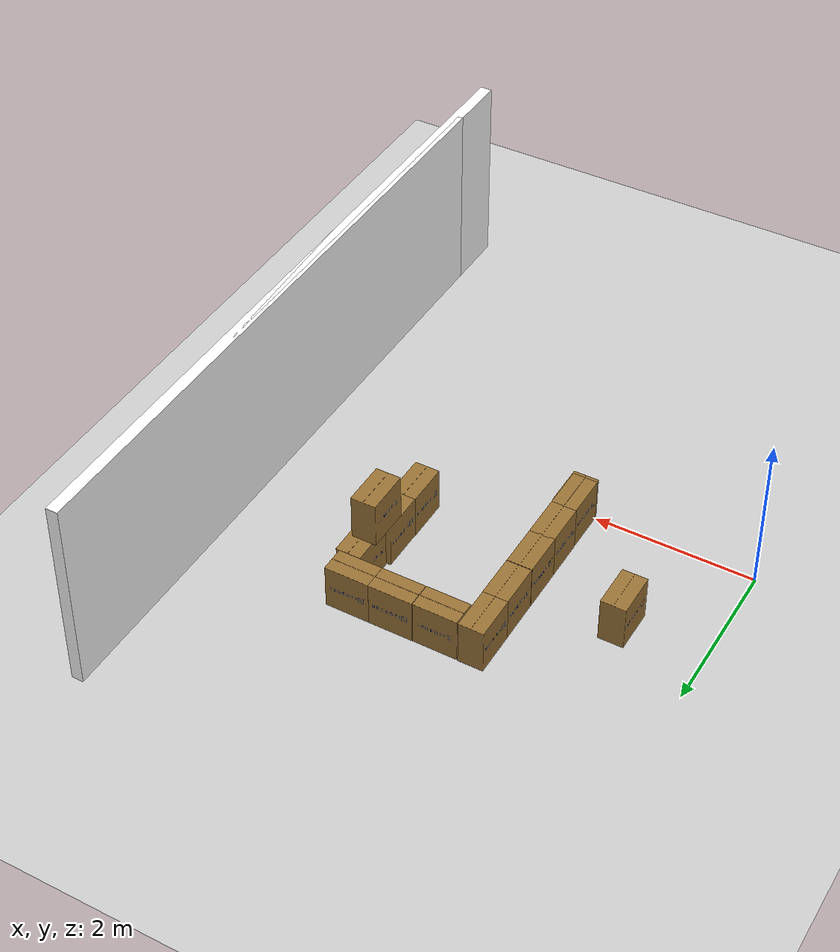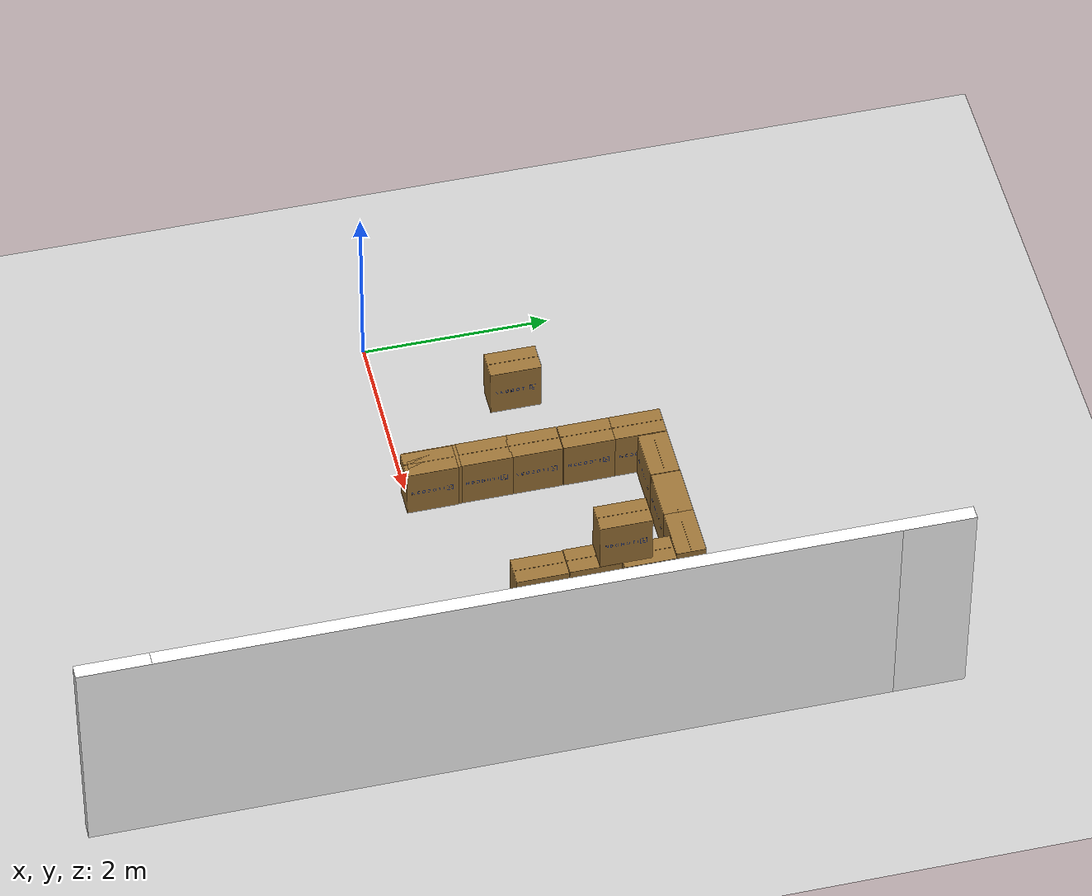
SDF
<sdf version="1.9">
 <world name="default">
  <model name="ground_plane">
   <static>true</static>
   <link name="link">
    <collision name="collision">
     <geometry><plane><normal>0 0 1</normal><size>100 100</size></plane></geometry>
    </collision>
    <visual name="visual">
     <geometry><plane><normal>0 0 1</normal><size>100 100</size></plane></geometry>
     <material>
      <ambient>0.8 0.8 0.8 1</ambient>
      <diffuse>0.8 0.8 0.8 1</diffuse>
      <specular>0.8 0.8 0.8 1</specular>
     </material>
    </visual>
    <inertial>
     <mass>1</mass>
     <inertia><ixx>1</ixx><ixy>0</ixy><ixz>0</ixz><iyy>1</iyy><iyz>0</iyz><izz>1</izz></inertia>
    </inertial>
   </link>
  </model>
  <model name="office_env_w">
   <pose>5.73367 0.847832 1.25 0 -0 1.57</pose>
   <link name="Wall_10">
    <visual name="Wall_10_Visual_0">
     <geometry><box><size>8.324 0.15 2.5</size></box></geometry>
     <material><ambient>0.2 0.2 0.2 1</ambient><diffuse>1 1 1 1</diffuse><specular>1 1 1 1</specular></material>
     <meta><layer>0</layer></meta>
    </visual>
    <collision name="Wall_10_Collision_0"><geometry><box><size>8.324 0.15 2.5</size></box></geometry></collision>
    <inertial>
     <mass>1</mass>
     <inertia><ixx>1</ixx><ixy>0</ixy><ixz>0</ixz><iyy>1</iyy><iyz>0</iyz><izz>1</izz></inertia>
    </inertial>
   </link>
   <static>true</static>
  </model>
  <model name="neobotix_box">
   <link name="link_1">
    <visual name="visual">
     <geometry>
      <mesh>
       <uri>file:///home/pradheep/iron_ws/src/neo_simulation2/models/neo_office_box/model://neo_office_box/meshes/model.dae</uri>
       <scale>0.1 0.1 0.1</scale>
      </mesh>
     </geometry>
    </visual>
    <collision name="collision">
     <geometry>
      <mesh>
       <uri>file:///home/pradheep/iron_ws/src/neo_simulation2/models/neo_office_box/model://neo_office_box/meshes/model.dae</uri>
       <scale>0.1 0.1 0.1</scale>
      </mesh>
     </geometry>
    </collision>
    <inertial>
     <mass>1</mass>
     <inertia><ixx>1</ixx><ixy>0</ixy><ixz>0</ixz><iyy>1</iyy><iyz>0</iyz><izz>1</izz></inertia>
    </inertial>
   </link>
   <pose>3.9 2.13819 0.289901 0 -0 0</pose>
   <static>false</static>
  </model>
  <model name="neobotix_box_1">
   <link name="link_1">
    <visual name="visual">
     <geometry>
      <mesh>
       <uri>file:///home/pradheep/iron_ws/src/neo_simulation2/models/neo_office_box/model://neo_office_box/meshes/model.dae</uri>
       <scale>0.1 0.1 0.1</scale>
      </mesh>
     </geometry>
    </visual>
    <collision name="collision">
     <geometry>
      <mesh>
       <uri>file:///home/pradheep/iron_ws/src/neo_simulation2/models/neo_office_box/model://neo_office_box/meshes/model.dae</uri>
       <scale>0.1 0.1 0.1</scale>
      </mesh>
     </geometry>
    </collision>
    <inertial>
     <mass>1</mass>
     <inertia><ixx>1</ixx><ixy>0</ixy><ixz>0</ixz><iyy>1</iyy><iyz>0</iyz><izz>1</izz></inertia>
    </inertial>
   </link>
   <pose>3.84411 1.89103 0.883761 0 -0 0</pose>
   <static>false</static>
  </model>
  <model name="neobotix_box_2">
   <link name="link_1">
    <visual name="visual">
     <geometry>
      <mesh>
       <uri>file:///home/pradheep/iron_ws/src/neo_simulation2/models/neo_office_box/model://neo_office_box/meshes/model.dae</uri>
       <scale>0.1 0.1 0.1</scale>
      </mesh>
     </geometry>
    </visual>
    <collision name="collision">
     <geometry>
      <mesh>
       <uri>file:///home/pradheep/iron_ws/src/neo_simulation2/models/neo_office_box/model://neo_office_box/meshes/model.dae</uri>
       <scale>0.1 0.1 0.1</scale>
      </mesh>
     </geometry>
    </collision>
    <inertial>
     <mass>1</mass>
     <inertia><ixx>1</ixx><ixy>0</ixy><ixz>0</ixz><iyy>1</iyy><iyz>0</iyz><izz>1</izz></inertia>
    </inertial>
   </link>
   <pose>3.8441 1.0174 0.2899 0 -0 0</pose>
   <static>false</static>
  </model>
  <model name="neobotix_box_3">
   <link name="link_1">
    <visual name="visual">
     <geometry>
      <mesh>
       <uri>file:///home/pradheep/iron_ws/src/neo_simulation2/models/neo_office_box/model://neo_office_box/meshes/model.dae</uri>
       <scale>0.1 0.1 0.1</scale>
      </mesh>
     </geometry>
    </visual>
    <collision name="collision">
     <geometry>
      <mesh>
       <uri>file:///home/pradheep/iron_ws/src/neo_simulation2/models/neo_office_box/model://neo_office_box/meshes/model.dae</uri>
       <scale>0.1 0.1 0.1</scale>
      </mesh>
     </geometry>
    </collision>
    <inertial>
     <mass>1</mass>
     <inertia><ixx>1</ixx><ixy>0</ixy><ixz>0</ixz><iyy>1</iyy><iyz>0</iyz><izz>1</izz></inertia>
    </inertial>
   </link>
   <pose>3.72859 2.58 0.294325 0 -0 1.57</pose>
   <static>false</static>
  </model>
  <model name="neobotix_box_3_2">
   <link name="link_1">
    <visual name="visual">
     <geometry>
      <mesh>
       <uri>file:///home/pradheep/iron_ws/src/neo_simulation2/models/neo_office_box/model://neo_office_box/meshes/model.dae</uri>
       <scale>0.1 0.1 0.1</scale>
      </mesh>
     </geometry>
    </visual>
    <collision name="collision">
     <geometry>
      <mesh>
       <uri>file:///home/pradheep/iron_ws/src/neo_simulation2/models/neo_office_box/model://neo_office_box/meshes/model.dae</uri>
       <scale>0.1 0.1 0.1</scale>
      </mesh>
     </geometry>
    </collision>
    <inertial>
     <mass>1</mass>
     <inertia><ixx>1</ixx><ixy>0</ixy><ixz>0</ixz><iyy>1</iyy><iyz>0</iyz><izz>1</izz></inertia>
    </inertial>
   </link>
   <pose>3.17414 2.58 0.294325 0 -0 1.57</pose>
   <static>false</static>
  </model>
  <model name="neobotix_box_3_2_1">
   <link name="link_1">
    <visual name="visual">
     <geometry>
      <mesh>
       <uri>file:///home/pradheep/iron_ws/src/neo_simulation2/models/neo_office_box/model://neo_office_box/meshes/model.dae</uri>
       <scale>0.1 0.1 0.1</scale>
      </mesh>
     </geometry>
    </visual>
    <collision name="collision">
     <geometry>
      <mesh>
       <uri>file:///home/pradheep/iron_ws/src/neo_simulation2/models/neo_office_box/model://neo_office_box/meshes/model.dae</uri>
       <scale>0.1 0.1 0.1</scale>
      </mesh>
     </geometry>
    </collision>
    <inertial>
     <mass>1</mass>
     <inertia><ixx>1</ixx><ixy>0</ixy><ixz>0</ixz><iyy>1</iyy><iyz>0</iyz><izz>1</izz></inertia>
    </inertial>
   </link>
   <pose>2.61416 2.57785 0.294325 0 -0 1.57</pose>
   <static>false</static>
  </model>
  <model name="neobotix_box_3_1_1_4">
   <link name="link_1">
    <visual name="visual">
     <geometry>
      <mesh>
       <uri>file:///home/pradheep/iron_ws/src/neo_simulation2/models/neo_office_box/model://neo_office_box/meshes/model.dae</uri>
       <scale>0.1 0.1 0.1</scale>
      </mesh>
     </geometry>
    </visual>
    <collision name="collision">
     <geometry>
      <mesh>
       <uri>file:///home/pradheep/iron_ws/src/neo_simulation2/models/neo_office_box/model://neo_office_box/meshes/model.dae</uri>
       <scale>0.1 0.1 0.1</scale>
      </mesh>
     </geometry>
    </collision>
    <inertial>
     <mass>1</mass>
     <inertia><ixx>1</ixx><ixy>0</ixy><ixz>0</ixz><iyy>1</iyy><iyz>0</iyz><izz>1</izz></inertia>
    </inertial>
   </link>
   <pose>2.17697 0.234524 0.2899 0 -0 0</pose>
   <static>false</static>
  </model>
  <model name="neobotix_box_3_1_1_4_1">
   <link name="link_1">
    <visual name="visual">
     <geometry>
      <mesh>
       <uri>file:///home/pradheep/iron_ws/src/neo_simulation2/models/neo_office_box/model://neo_office_box/meshes/model.dae</uri>
       <scale>0.1 0.1 0.1</scale>
      </mesh>
     </geometry>
    </visual>
    <collision name="collision">
     <geometry>
      <mesh>
       <uri>file:///home/pradheep/iron_ws/src/neo_simulation2/models/neo_office_box/model://neo_office_box/meshes/model.dae</uri>
       <scale>0.1 0.1 0.1</scale>
      </mesh>
     </geometry>
    </collision>
    <inertial>
     <mass>1</mass>
     <inertia><ixx>1</ixx><ixy>0</ixy><ixz>0</ixz><iyy>1</iyy><iyz>0</iyz><izz>1</izz></inertia>
    </inertial>
   </link>
   <pose>2.17187 0.271358 0.2899 0 -0 0</pose>
   <static>false</static>
  </model>
  <model name="neobotix_box_3_1_1_4_1_1">
   <link name="link_1">
    <visual name="visual">
     <geometry>
      <mesh>
       <uri>file:///home/pradheep/iron_ws/src/neo_simulation2/models/neo_office_box/model://neo_office_box/meshes/model.dae</uri>
       <scale>0.1 0.1 0.1</scale>
      </mesh>
     </geometry>
    </visual>
    <collision name="collision">
     <geometry>
      <mesh>
       <uri>file:///home/pradheep/iron_ws/src/neo_simulation2/models/neo_office_box/model://neo_office_box/meshes/model.dae</uri>
       <scale>0.1 0.1 0.1</scale>
      </mesh>
     </geometry>
    </collision>
    <inertial>
     <mass>1</mass>
     <inertia><ixx>1</ixx><ixy>0</ixy><ixz>0</ixz><iyy>1</iyy><iyz>0</iyz><izz>1</izz></inertia>
    </inertial>
   </link>
   <pose>2.16949 0.815161 0.2899 0 -0 0</pose>
   <static>false</static>
  </model>
  <model name="neobotix_box_3_1_1_4_1_2">
   <link name="link_1">
    <visual name="visual">
     <geometry>
      <mesh>
       <uri>file:///home/pradheep/iron_ws/src/neo_simulation2/models/neo_office_box/model://neo_office_box/meshes/model.dae</uri>
       <scale>0.1 0.1 0.1</scale>
      </mesh>
     </geometry>
    </visual>
    <collision name="collision">
     <geometry>
      <mesh>
       <uri>file:///home/pradheep/iron_ws/src/neo_simulation2/models/neo_office_box/model://neo_office_box/meshes/model.dae</uri>
       <scale>0.1 0.1 0.1</scale>
      </mesh>
     </geometry>
    </collision>
    <inertial>
     <mass>1</mass>
     <inertia><ixx>1</ixx><ixy>0</ixy><ixz>0</ixz><iyy>1</iyy><iyz>0</iyz><izz>1</izz></inertia>
    </inertial>
   </link>
   <pose>2.16867 1.34652 0.2899 0 -0 0</pose>
   <static>false</static>
  </model>
  <model name="neobotix_box_3_1_1_4_1_2_1">
   <link name="link_1">
    <visual name="visual">
     <geometry>
      <mesh>
       <uri>file:///home/pradheep/iron_ws/src/neo_simulation2/models/neo_office_box/model://neo_office_box/meshes/model.dae</uri>
       <scale>0.1 0.1 0.1</scale>
      </mesh>
     </geometry>
    </visual>
    <collision name="collision">
     <geometry>
      <mesh>
       <uri>file:///home/pradheep/iron_ws/src/neo_simulation2/models/neo_office_box/model://neo_office_box/meshes/model.dae</uri>
       <scale>0.1 0.1 0.1</scale>
      </mesh>
     </geometry>
    </collision>
    <inertial>
     <mass>1</mass>
     <inertia><ixx>1</ixx><ixy>0</ixy><ixz>0</ixz><iyy>1</iyy><iyz>0</iyz><izz>1</izz></inertia>
    </inertial>
   </link>
   <pose>2.16985 1.90775 0.2899 0 -0 0</pose>
   <static>false</static>
  </model>
  <model name="neobotix_box_3_1_1_4_1_2_2">
   <link name="link_1">
    <visual name="visual">
     <geometry>
      <mesh>
       <uri>file:///home/pradheep/iron_ws/src/neo_simulation2/models/neo_office_box/model://neo_office_box/meshes/model.dae</uri>
       <scale>0.1 0.1 0.1</scale>
      </mesh>
     </geometry>
    </visual>
    <collision name="collision">
     <geometry>
      <mesh>
       <uri>file:///home/pradheep/iron_ws/src/neo_simulation2/models/neo_office_box/model://neo_office_box/meshes/model.dae</uri>
       <scale>0.1 0.1 0.1</scale>
      </mesh>
     </geometry>
    </collision>
    <inertial>
     <mass>1</mass>
     <inertia><ixx>1</ixx><ixy>0</ixy><ixz>0</ixz><iyy>1</iyy><iyz>0</iyz><izz>1</izz></inertia>
    </inertial>
   </link>
   <pose>2.16833 2.45961 0.2899 0 -0 0</pose>
   <static>false</static>
  </model>
  <model name="neobotix_box_3_1_1_1_1_1_1_1_2">
   <link name="link_1">
    <visual name="visual">
     <geometry>
      <mesh>
       <uri>file:///home/pradheep/iron_ws/src/neo_simulation2/models/neo_office_box/model://neo_office_box/meshes/model.dae</uri>
       <scale>0.1 0.1 0.1</scale>
      </mesh>
     </geometry>
    </visual>
    <collision name="collision">
     <geometry>
      <mesh>
       <uri>file:///home/pradheep/iron_ws/src/neo_simulation2/models/neo_office_box/model://neo_office_box/meshes/model.dae</uri>
       <scale>0.1 0.1 0.1</scale>
      </mesh>
     </geometry>
    </collision>
    <inertial>
     <mass>1</mass>
     <inertia><ixx>1</ixx><ixy>0</ixy><ixz>0</ixz><iyy>1</iyy><iyz>0</iyz><izz>1</izz></inertia>
    </inertial>
   </link>
   <pose>1.00198 1.39551 0.2899 0 -0 0</pose>
   <static>false</static>
  </model>
  <model name="office_env_w_1">
   <pose>5.73307 0.08924 1.25 0 -0 1.57</pose>
   <link name="Wall_10">
    <visual name="Wall_10_Visual_0">
     <geometry><box><size>8.324 0.15 2.5</size></box></geometry>
     <material><ambient>0.2 0.2 0.2 1</ambient><diffuse>1 1 1 1</diffuse><specular>1 1 1 1</specular></material>
     <meta><layer>0</layer></meta>
    </visual>
    <collision name="Wall_10_Collision_0"><geometry><box><size>8.324 0.15 2.5</size></box></geometry></collision>
    <inertial>
     <mass>1</mass>
     <inertia><ixx>1</ixx><ixy>0</ixy><ixz>0</ixz><iyy>1</iyy><iyz>0</iyz><izz>1</izz></inertia>
    </inertial>
   </link>
   <static>true</static>
  </model>
  <model name="neobotix_box_1_1">
   <link name="link_1">
    <visual name="visual">
     <geometry>
      <mesh>
       <uri>file:///home/pradheep/iron_ws/src/neo_simulation2/models/neo_office_box/model://neo_office_box/meshes/model.dae</uri>
       <scale>0.1 0.1 0.1</scale>
      </mesh>
     </geometry>
    </visual>
    <collision name="collision">
     <geometry>
      <mesh>
       <uri>file:///home/pradheep/iron_ws/src/neo_simulation2/models/neo_office_box/model://neo_office_box/meshes/model.dae</uri>
       <scale>0.1 0.1 0.1</scale>
      </mesh>
     </geometry>
    </collision>
    <inertial>
     <mass>1</mass>
     <inertia><ixx>1</ixx><ixy>0</ixy><ixz>0</ixz><iyy>1</iyy><iyz>0</iyz><izz>1</izz></inertia>
    </inertial>
   </link>
   <pose>3.84411 1.57505 0.300478 0 -0 0</pose>
   <static>false</static>
  </model>
 </world>
</sdf>
